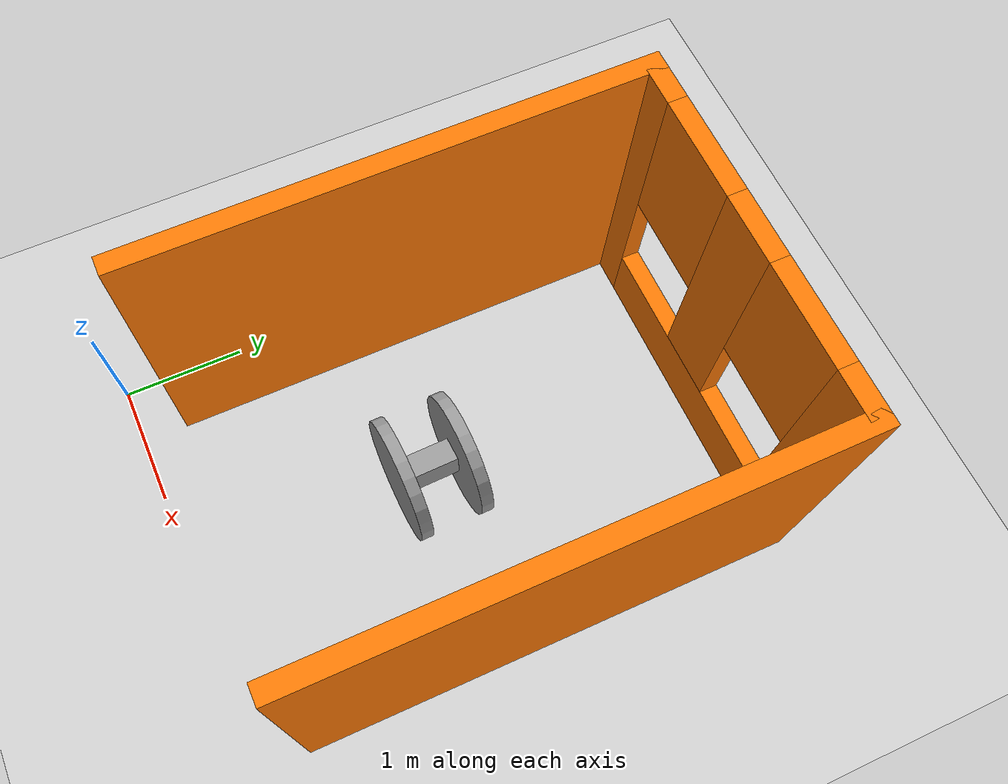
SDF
<sdf version="1.6">
 <world name="default">
  <model name="ground_plane">
   <static>1</static>
   <link name="link">
    <collision name="collision">
     <geometry><plane><normal>0 0 1</normal><size>100 100</size></plane></geometry>
     <surface>
      <contact><collide_bitmask>65535</collide_bitmask></contact>
      <friction><ode><mu>100</mu><mu2>50</mu2></ode></friction>
     </surface>
    </collision>
    <visual name="visual">
     <cast_shadows>0</cast_shadows>
     <geometry><plane><normal>0 0 1</normal><size>100 100</size></plane></geometry>
     <material>
      <script><uri>file://media/materials/scripts/gazebo.material</uri><name>Gazebo/Grey</name></script>
     </material>
    </visual>
   </link>
  </model>
  <model name="myrobot_0">
   <link name="link_2">
    <pose>-0.013333 0 -0.013331 0 -0 0</pose>
    <inertial>
     <mass>1</mass>
     <inertia>
      <ixx>0.166667</ixx>
      <ixy>0</ixy>
      <ixz>0</ixz>
      <iyy>0.166667</iyy>
      <iyz>0</iyz>
      <izz>0.166667</izz>
     </inertia>
    </inertial>
    <visual name="visual">
     <geometry><box><size>0.2 0.4 0.2</size></box></geometry>
     <material>
      <lighting>1</lighting>
      <script><uri>file://media/materials/scripts/gazebo.material</uri><name>Gazebo/Grey</name></script>
      <shader type="pixel"><normal_map>__default__</normal_map></shader>
      <ambient>0.3 0.3 0.3 1</ambient>
      <diffuse>0.7 0.7 0.7 1</diffuse>
      <specular>0.01 0.01 0.01 1</specular>
      <emissive>0 0 0 1</emissive>
     </material>
    </visual>
    <collision name="collision">
     <geometry><box><size>0.2 0.4 0.2</size></box></geometry>
     <surface>
      <friction>
       <ode><mu>1</mu><mu2>1</mu2><fdir1>0 0 0</fdir1><slip1>0</slip1><slip2>0</slip2></ode>
       <torsional>
        <coefficient>1</coefficient>
        <patch_radius>0</patch_radius>
        <surface_radius>0</surface_radius>
        <use_patch_radius>1</use_patch_radius>
        <ode><slip>0</slip></ode>
       </torsional>
      </friction>
      <bounce><restitution_coefficient>0</restitution_coefficient><threshold>1e+06</threshold></bounce>
      <contact>
       <collide_without_contact>0</collide_without_contact>
       <collide_without_contact_bitmask>1</collide_without_contact_bitmask>
       <collide_bitmask>1</collide_bitmask>
       <ode>
        <soft_cfm>0</soft_cfm>
        <soft_erp>0.2</soft_erp>
        <kp>1e+13</kp>
        <kd>1</kd>
        <max_vel>0.01</max_vel>
        <min_depth>0</min_depth>
       </ode>
       <bullet>
        <split_impulse>1</split_impulse>
        <split_impulse_penetration_threshold>-0.01</split_impulse_penetration_threshold>
        <soft_cfm>0</soft_cfm>
        <soft_erp>0.2</soft_erp>
        <kp>1e+13</kp>
        <kd>1</kd>
       </bullet>
      </contact>
     </surface>
    </collision>
   </link>
   <link name="link_3">
    <pose>0.006667 -0.250048 0.006665 1.5707 -0 0</pose>
    <inertial>
     <mass>1</mass>
     <inertia><ixx>0.145833</ixx><ixy>0</ixy><ixz>0</ixz><iyy>0.145833</iyy><iyz>0</iyz><izz>0.125</izz></inertia>
    </inertial>
    <visual name="visual">
     <geometry><cylinder><radius>0.5</radius><length>0.1</length></cylinder></geometry>
     <material>
      <lighting>1</lighting>
      <script><uri>file://media/materials/scripts/gazebo.material</uri><name>Gazebo/Grey</name></script>
      <shader type="pixel"><normal_map>__default__</normal_map></shader>
      <ambient>0.3 0.3 0.3 1</ambient>
      <diffuse>0.7 0.7 0.7 1</diffuse>
      <specular>0.01 0.01 0.01 1</specular>
      <emissive>0 0 0 1</emissive>
     </material>
    </visual>
    <collision name="collision">
     <geometry><cylinder><radius>0.5</radius><length>0.1</length></cylinder></geometry>
     <surface>
      <friction>
       <ode><mu>1</mu><mu2>1</mu2><fdir1>0 0 0</fdir1><slip1>0</slip1><slip2>0</slip2></ode>
       <torsional>
        <coefficient>1</coefficient>
        <patch_radius>0</patch_radius>
        <surface_radius>0</surface_radius>
        <use_patch_radius>1</use_patch_radius>
        <ode><slip>0</slip></ode>
       </torsional>
      </friction>
      <bounce><restitution_coefficient>0</restitution_coefficient><threshold>1e+06</threshold></bounce>
      <contact>
       <collide_without_contact>0</collide_without_contact>
       <collide_without_contact_bitmask>1</collide_without_contact_bitmask>
       <collide_bitmask>1</collide_bitmask>
       <ode>
        <soft_cfm>0</soft_cfm>
        <soft_erp>0.2</soft_erp>
        <kp>1e+13</kp>
        <kd>1</kd>
        <max_vel>0.01</max_vel>
        <min_depth>0</min_depth>
       </ode>
       <bullet>
        <split_impulse>1</split_impulse>
        <split_impulse_penetration_threshold>-0.01</split_impulse_penetration_threshold>
        <soft_cfm>0</soft_cfm>
        <soft_erp>0.2</soft_erp>
        <kp>1e+13</kp>
        <kd>1</kd>
       </bullet>
      </contact>
     </surface>
    </collision>
   </link>
   <link name="link_3_clone">
    <pose>0.006667 0.250048 0.006669 1.5707 -0 0</pose>
    <inertial>
     <mass>1</mass>
     <inertia><ixx>0.145833</ixx><ixy>0</ixy><ixz>0</ixz><iyy>0.145833</iyy><iyz>0</iyz><izz>0.125</izz></inertia>
    </inertial>
    <visual name="visual">
     <geometry><cylinder><radius>0.5</radius><length>0.1</length></cylinder></geometry>
     <material>
      <lighting>1</lighting>
      <script><uri>file://media/materials/scripts/gazebo.material</uri><name>Gazebo/Grey</name></script>
      <shader type="pixel"><normal_map>__default__</normal_map></shader>
      <ambient>0.3 0.3 0.3 1</ambient>
      <diffuse>0.7 0.7 0.7 1</diffuse>
      <specular>0.01 0.01 0.01 1</specular>
      <emissive>0 0 0 1</emissive>
     </material>
    </visual>
    <collision name="collision">
     <geometry><cylinder><radius>0.5</radius><length>0.1</length></cylinder></geometry>
     <surface>
      <friction>
       <ode><mu>1</mu><mu2>1</mu2><fdir1>0 0 0</fdir1><slip1>0</slip1><slip2>0</slip2></ode>
       <torsional>
        <coefficient>1</coefficient>
        <patch_radius>0</patch_radius>
        <surface_radius>0</surface_radius>
        <use_patch_radius>1</use_patch_radius>
        <ode><slip>0</slip></ode>
       </torsional>
      </friction>
      <bounce><restitution_coefficient>0</restitution_coefficient><threshold>1e+06</threshold></bounce>
      <contact>
       <collide_without_contact>0</collide_without_contact>
       <collide_without_contact_bitmask>1</collide_without_contact_bitmask>
       <collide_bitmask>1</collide_bitmask>
       <ode>
        <soft_cfm>0</soft_cfm>
        <soft_erp>0.2</soft_erp>
        <kp>1e+13</kp>
        <kd>1</kd>
        <max_vel>0.01</max_vel>
        <min_depth>0</min_depth>
       </ode>
       <bullet>
        <split_impulse>1</split_impulse>
        <split_impulse_penetration_threshold>-0.01</split_impulse_penetration_threshold>
        <soft_cfm>0</soft_cfm>
        <soft_erp>0.2</soft_erp>
        <kp>1e+13</kp>
        <kd>1</kd>
       </bullet>
      </contact>
     </surface>
    </collision>
   </link>
   <joint name="link_2_JOINT_6" type="revolute">
    <parent>link_2</parent>
    <child>link_3</child>
    <axis>
     <xyz>0 0 -1</xyz>
     <use_parent_model_frame>0</use_parent_model_frame>
     <limit>
      <lower>-1.79769e+308</lower>
      <upper>1.79769e+308</upper>
      <effort>-1</effort>
      <velocity>-1</velocity>
     </limit>
     <dynamics>
      <spring_reference>0</spring_reference>
      <spring_stiffness>0</spring_stiffness>
      <damping>0</damping>
     </dynamics>
    </axis>
    <physics>
     <ode><limit><cfm>0</cfm><erp>0.2</erp></limit><suspension><cfm>0</cfm><erp>0.2</erp></suspension></ode>
    </physics>
   </joint>
   <joint name="link_2_JOINT_7" type="revolute">
    <parent>link_2</parent>
    <child>link_3_clone</child>
    <axis>
     <xyz>0 0 1</xyz>
     <use_parent_model_frame>0</use_parent_model_frame>
     <limit>
      <lower>-1.79769e+308</lower>
      <upper>1.79769e+308</upper>
      <effort>-1</effort>
      <velocity>-1</velocity>
     </limit>
     <dynamics>
      <spring_reference>0</spring_reference>
      <spring_stiffness>0</spring_stiffness>
      <damping>0</damping>
     </dynamics>
    </axis>
    <physics>
     <ode><limit><cfm>0</cfm><erp>0.2</erp></limit><suspension><cfm>0</cfm><erp>0.2</erp></suspension></ode>
    </physics>
   </joint>
   <static>0</static>
   <pose>1.77026 2.01534 0.492404 -4e-06 -0.151141 0.020457</pose>
  </model>
  <model name="myhouse">
   <link name="Wall_10">
    <pose>1.84738 5.36737 0 0 -0 0</pose>
    <visual name="Wall_10_Visual_0">
     <pose>-1.2952 0 1.25 0 -0 0</pose>
     <geometry><box><size>0.409593 0.15 2.5</size></box></geometry>
     <material>
      <script><uri>file://media/materials/scripts/gazebo.material</uri><name>Gazebo/Grey</name></script>
      <ambient>0.996078 0.47451 0.0196078 1</ambient>
      <shader type="pixel"/>
      <diffuse>0.7 0.7 0.7 1</diffuse>
      <specular>0.01 0.01 0.01 1</specular>
      <emissive>0 0 0 1</emissive>
     </material>
     <meta><layer>0</layer></meta>
    </visual>
    <visual name="Wall_10_Visual_1">
     <pose>0.204797 0 0.25 0 -0 0</pose>
     <geometry><box><size>2.59041 0.15 0.5</size></box></geometry>
     <material>
      <script><uri>file://media/materials/scripts/gazebo.material</uri><name>Gazebo/Grey</name></script>
      <ambient>0.996078 0.47451 0.0196078 1</ambient>
      <shader type="pixel"/>
      <diffuse>0.7 0.7 0.7 1</diffuse>
      <specular>0.01 0.01 0.01 1</specular>
      <emissive>0 0 0 1</emissive>
     </material>
     <meta><layer>0</layer></meta>
    </visual>
    <visual name="Wall_10_Visual_2">
     <pose>-0.02201 0 1.5 0 -0 0</pose>
     <geometry><box><size>0.536793 0.15 2</size></box></geometry>
     <material>
      <script><uri>file://media/materials/scripts/gazebo.material</uri><name>Gazebo/Grey</name></script>
      <ambient>0.996078 0.47451 0.0196078 1</ambient>
      <shader type="pixel"/>
      <diffuse>0.7 0.7 0.7 1</diffuse>
      <specular>0.01 0.01 0.01 1</specular>
      <emissive>0 0 0 1</emissive>
     </material>
     <meta><layer>0</layer></meta>
    </visual>
    <visual name="Wall_10_Visual_3">
     <pose>1.27319 0 1.5 0 -0 0</pose>
     <geometry><box><size>0.453614 0.15 2</size></box></geometry>
     <material>
      <script><uri>file://media/materials/scripts/gazebo.material</uri><name>Gazebo/Grey</name></script>
      <ambient>0.996078 0.47451 0.0196078 1</ambient>
      <shader type="pixel"/>
      <diffuse>0.7 0.7 0.7 1</diffuse>
      <specular>0.01 0.01 0.01 1</specular>
      <emissive>0 0 0 1</emissive>
     </material>
     <meta><layer>0</layer></meta>
    </visual>
    <visual name="Wall_10_Visual_4">
     <pose>-0.690407 0 1.9 0 -0 0</pose>
     <geometry><box><size>0.8 0.15 1.2</size></box></geometry>
     <material>
      <script><uri>file://media/materials/scripts/gazebo.material</uri><name>Gazebo/Grey</name></script>
      <ambient>0.996078 0.47451 0.0196078 1</ambient>
      <shader type="pixel"/>
      <diffuse>0.7 0.7 0.7 1</diffuse>
      <specular>0.01 0.01 0.01 1</specular>
      <emissive>0 0 0 1</emissive>
     </material>
     <meta><layer>0</layer></meta>
    </visual>
    <visual name="Wall_10_Visual_5">
     <pose>0.646386 0 1.9 0 -0 0</pose>
     <geometry><box><size>0.8 0.15 1.2</size></box></geometry>
     <material>
      <script><uri>file://media/materials/scripts/gazebo.material</uri><name>Gazebo/Grey</name></script>
      <ambient>0.996078 0.47451 0.0196078 1</ambient>
      <shader type="pixel"/>
      <diffuse>0.7 0.7 0.7 1</diffuse>
      <specular>0.01 0.01 0.01 1</specular>
      <emissive>0 0 0 1</emissive>
     </material>
     <meta><layer>0</layer></meta>
    </visual>
    <collision name="Wall_10_Collision_0">
     <pose>-1.2952 0 1.25 0 -0 0</pose>
     <geometry><box><size>0.409593 0.15 2.5</size></box></geometry>
     <surface>
      <friction>
       <ode><mu>1</mu><mu2>1</mu2><fdir1>0 0 0</fdir1><slip1>0</slip1><slip2>0</slip2></ode>
       <torsional>
        <coefficient>1</coefficient>
        <patch_radius>0</patch_radius>
        <surface_radius>0</surface_radius>
        <use_patch_radius>1</use_patch_radius>
        <ode><slip>0</slip></ode>
       </torsional>
      </friction>
      <bounce><restitution_coefficient>0</restitution_coefficient><threshold>1e+06</threshold></bounce>
      <contact>
       <collide_without_contact>0</collide_without_contact>
       <collide_without_contact_bitmask>1</collide_without_contact_bitmask>
       <collide_bitmask>1</collide_bitmask>
       <ode>
        <soft_cfm>0</soft_cfm>
        <soft_erp>0.2</soft_erp>
        <kp>1e+13</kp>
        <kd>1</kd>
        <max_vel>0.01</max_vel>
        <min_depth>0</min_depth>
       </ode>
       <bullet>
        <split_impulse>1</split_impulse>
        <split_impulse_penetration_threshold>-0.01</split_impulse_penetration_threshold>
        <soft_cfm>0</soft_cfm>
        <soft_erp>0.2</soft_erp>
        <kp>1e+13</kp>
        <kd>1</kd>
       </bullet>
      </contact>
     </surface>
    </collision>
    <collision name="Wall_10_Collision_2">
     <pose>-0.02201 0 1.5 0 -0 0</pose>
     <geometry><box><size>0.536793 0.15 2</size></box></geometry>
     <surface>
      <friction>
       <ode><mu>1</mu><mu2>1</mu2><fdir1>0 0 0</fdir1><slip1>0</slip1><slip2>0</slip2></ode>
       <torsional>
        <coefficient>1</coefficient>
        <patch_radius>0</patch_radius>
        <surface_radius>0</surface_radius>
        <use_patch_radius>1</use_patch_radius>
        <ode><slip>0</slip></ode>
       </torsional>
      </friction>
      <bounce><restitution_coefficient>0</restitution_coefficient><threshold>1e+06</threshold></bounce>
      <contact>
       <collide_without_contact>0</collide_without_contact>
       <collide_without_contact_bitmask>1</collide_without_contact_bitmask>
       <collide_bitmask>1</collide_bitmask>
       <ode>
        <soft_cfm>0</soft_cfm>
        <soft_erp>0.2</soft_erp>
        <kp>1e+13</kp>
        <kd>1</kd>
        <max_vel>0.01</max_vel>
        <min_depth>0</min_depth>
       </ode>
       <bullet>
        <split_impulse>1</split_impulse>
        <split_impulse_penetration_threshold>-0.01</split_impulse_penetration_threshold>
        <soft_cfm>0</soft_cfm>
        <soft_erp>0.2</soft_erp>
        <kp>1e+13</kp>
        <kd>1</kd>
       </bullet>
      </contact>
     </surface>
    </collision>
    <collision name="Wall_10_Collision_1">
     <pose>0.204797 0 0.25 0 -0 0</pose>
     <geometry><box><size>2.59041 0.15 0.5</size></box></geometry>
     <surface>
      <friction>
       <ode><mu>1</mu><mu2>1</mu2><fdir1>0 0 0</fdir1><slip1>0</slip1><slip2>0</slip2></ode>
       <torsional>
        <coefficient>1</coefficient>
        <patch_radius>0</patch_radius>
        <surface_radius>0</surface_radius>
        <use_patch_radius>1</use_patch_radius>
        <ode><slip>0</slip></ode>
       </torsional>
      </friction>
      <bounce><restitution_coefficient>0</restitution_coefficient><threshold>1e+06</threshold></bounce>
      <contact>
       <collide_without_contact>0</collide_without_contact>
       <collide_without_contact_bitmask>1</collide_without_contact_bitmask>
       <collide_bitmask>1</collide_bitmask>
       <ode>
        <soft_cfm>0</soft_cfm>
        <soft_erp>0.2</soft_erp>
        <kp>1e+13</kp>
        <kd>1</kd>
        <max_vel>0.01</max_vel>
        <min_depth>0</min_depth>
       </ode>
       <bullet>
        <split_impulse>1</split_impulse>
        <split_impulse_penetration_threshold>-0.01</split_impulse_penetration_threshold>
        <soft_cfm>0</soft_cfm>
        <soft_erp>0.2</soft_erp>
        <kp>1e+13</kp>
        <kd>1</kd>
       </bullet>
      </contact>
     </surface>
    </collision>
    <collision name="Wall_10_Collision_3">
     <pose>1.27319 0 1.5 0 -0 0</pose>
     <geometry><box><size>0.453614 0.15 2</size></box></geometry>
     <surface>
      <friction>
       <ode><mu>1</mu><mu2>1</mu2><fdir1>0 0 0</fdir1><slip1>0</slip1><slip2>0</slip2></ode>
       <torsional>
        <coefficient>1</coefficient>
        <patch_radius>0</patch_radius>
        <surface_radius>0</surface_radius>
        <use_patch_radius>1</use_patch_radius>
        <ode><slip>0</slip></ode>
       </torsional>
      </friction>
      <bounce><restitution_coefficient>0</restitution_coefficient><threshold>1e+06</threshold></bounce>
      <contact>
       <collide_without_contact>0</collide_without_contact>
       <collide_without_contact_bitmask>1</collide_without_contact_bitmask>
       <collide_bitmask>1</collide_bitmask>
       <ode>
        <soft_cfm>0</soft_cfm>
        <soft_erp>0.2</soft_erp>
        <kp>1e+13</kp>
        <kd>1</kd>
        <max_vel>0.01</max_vel>
        <min_depth>0</min_depth>
       </ode>
       <bullet>
        <split_impulse>1</split_impulse>
        <split_impulse_penetration_threshold>-0.01</split_impulse_penetration_threshold>
        <soft_cfm>0</soft_cfm>
        <soft_erp>0.2</soft_erp>
        <kp>1e+13</kp>
        <kd>1</kd>
       </bullet>
      </contact>
     </surface>
    </collision>
    <collision name="Wall_10_Collision_4">
     <pose>-0.690407 0 1.9 0 -0 0</pose>
     <geometry><box><size>0.8 0.15 1.2</size></box></geometry>
     <surface>
      <friction>
       <ode><mu>1</mu><mu2>1</mu2><fdir1>0 0 0</fdir1><slip1>0</slip1><slip2>0</slip2></ode>
       <torsional>
        <coefficient>1</coefficient>
        <patch_radius>0</patch_radius>
        <surface_radius>0</surface_radius>
        <use_patch_radius>1</use_patch_radius>
        <ode><slip>0</slip></ode>
       </torsional>
      </friction>
      <bounce><restitution_coefficient>0</restitution_coefficient><threshold>1e+06</threshold></bounce>
      <contact>
       <collide_without_contact>0</collide_without_contact>
       <collide_without_contact_bitmask>1</collide_without_contact_bitmask>
       <collide_bitmask>1</collide_bitmask>
       <ode>
        <soft_cfm>0</soft_cfm>
        <soft_erp>0.2</soft_erp>
        <kp>1e+13</kp>
        <kd>1</kd>
        <max_vel>0.01</max_vel>
        <min_depth>0</min_depth>
       </ode>
       <bullet>
        <split_impulse>1</split_impulse>
        <split_impulse_penetration_threshold>-0.01</split_impulse_penetration_threshold>
        <soft_cfm>0</soft_cfm>
        <soft_erp>0.2</soft_erp>
        <kp>1e+13</kp>
        <kd>1</kd>
       </bullet>
      </contact>
     </surface>
    </collision>
    <collision name="Wall_10_Collision_5">
     <pose>0.646386 0 1.9 0 -0 0</pose>
     <geometry><box><size>0.8 0.15 1.2</size></box></geometry>
     <surface>
      <friction>
       <ode><mu>1</mu><mu2>1</mu2><fdir1>0 0 0</fdir1><slip1>0</slip1><slip2>0</slip2></ode>
       <torsional>
        <coefficient>1</coefficient>
        <patch_radius>0</patch_radius>
        <surface_radius>0</surface_radius>
        <use_patch_radius>1</use_patch_radius>
        <ode><slip>0</slip></ode>
       </torsional>
      </friction>
      <bounce><restitution_coefficient>0</restitution_coefficient><threshold>1e+06</threshold></bounce>
      <contact>
       <collide_without_contact>0</collide_without_contact>
       <collide_without_contact_bitmask>1</collide_without_contact_bitmask>
       <collide_bitmask>1</collide_bitmask>
       <ode>
        <soft_cfm>0</soft_cfm>
        <soft_erp>0.2</soft_erp>
        <kp>1e+13</kp>
        <kd>1</kd>
        <max_vel>0.01</max_vel>
        <min_depth>0</min_depth>
       </ode>
       <bullet>
        <split_impulse>1</split_impulse>
        <split_impulse_penetration_threshold>-0.01</split_impulse_penetration_threshold>
        <soft_cfm>0</soft_cfm>
        <soft_erp>0.2</soft_erp>
        <kp>1e+13</kp>
        <kd>1</kd>
       </bullet>
      </contact>
     </surface>
    </collision>
   </link>
   <link name="Wall_11">
    <pose>3.27238 3.44237 0 0 0 -1.5708</pose>
    <visual name="Wall_11_Visual">
     <pose>0 0 1.25 0 -0 0</pose>
     <geometry><box><size>4 0.15 2.5</size></box></geometry>
     <material>
      <script><uri>file://media/materials/scripts/gazebo.material</uri><name>Gazebo/Grey</name></script>
      <ambient>0.996078 0.47451 0.0196078 1</ambient>
      <shader type="pixel"/>
      <diffuse>0.7 0.7 0.7 1</diffuse>
      <specular>0.01 0.01 0.01 1</specular>
      <emissive>0 0 0 1</emissive>
     </material>
     <meta><layer>0</layer></meta>
    </visual>
    <collision name="Wall_11_Collision">
     <pose>0 0 1.25 0 -0 0</pose>
     <geometry><box><size>4 0.15 2.5</size></box></geometry>
     <surface>
      <friction>
       <ode><mu>1</mu><mu2>1</mu2><fdir1>0 0 0</fdir1><slip1>0</slip1><slip2>0</slip2></ode>
       <torsional>
        <coefficient>1</coefficient>
        <patch_radius>0</patch_radius>
        <surface_radius>0</surface_radius>
        <use_patch_radius>1</use_patch_radius>
        <ode><slip>0</slip></ode>
       </torsional>
      </friction>
      <bounce><restitution_coefficient>0</restitution_coefficient><threshold>1e+06</threshold></bounce>
      <contact>
       <collide_without_contact>0</collide_without_contact>
       <collide_without_contact_bitmask>1</collide_without_contact_bitmask>
       <collide_bitmask>1</collide_bitmask>
       <ode>
        <soft_cfm>0</soft_cfm>
        <soft_erp>0.2</soft_erp>
        <kp>1e+13</kp>
        <kd>1</kd>
        <max_vel>0.01</max_vel>
        <min_depth>0</min_depth>
       </ode>
       <bullet>
        <split_impulse>1</split_impulse>
        <split_impulse_penetration_threshold>-0.01</split_impulse_penetration_threshold>
        <soft_cfm>0</soft_cfm>
        <soft_erp>0.2</soft_erp>
        <kp>1e+13</kp>
        <kd>1</kd>
       </bullet>
      </contact>
     </surface>
    </collision>
   </link>
   <link name="Wall_15">
    <pose>0.422384 3.44237 0 0 0 -1.5708</pose>
    <visual name="Wall_15_Visual">
     <pose>0 0 1.25 0 -0 0</pose>
     <geometry><box><size>4 0.15 2.5</size></box></geometry>
     <material>
      <script><uri>file://media/materials/scripts/gazebo.material</uri><name>Gazebo/Grey</name></script>
      <ambient>0.996078 0.47451 0.0196078 1</ambient>
      <shader type="pixel"/>
      <diffuse>0.7 0.7 0.7 1</diffuse>
      <specular>0.01 0.01 0.01 1</specular>
      <emissive>0 0 0 1</emissive>
     </material>
     <meta><layer>0</layer></meta>
    </visual>
    <collision name="Wall_15_Collision">
     <pose>0 0 1.25 0 -0 0</pose>
     <geometry><box><size>4 0.15 2.5</size></box></geometry>
     <surface>
      <friction>
       <ode><mu>1</mu><mu2>1</mu2><fdir1>0 0 0</fdir1><slip1>0</slip1><slip2>0</slip2></ode>
       <torsional>
        <coefficient>1</coefficient>
        <patch_radius>0</patch_radius>
        <surface_radius>0</surface_radius>
        <use_patch_radius>1</use_patch_radius>
        <ode><slip>0</slip></ode>
       </torsional>
      </friction>
      <bounce><restitution_coefficient>0</restitution_coefficient><threshold>1e+06</threshold></bounce>
      <contact>
       <collide_without_contact>0</collide_without_contact>
       <collide_without_contact_bitmask>1</collide_without_contact_bitmask>
       <collide_bitmask>1</collide_bitmask>
       <ode>
        <soft_cfm>0</soft_cfm>
        <soft_erp>0.2</soft_erp>
        <kp>1e+13</kp>
        <kd>1</kd>
        <max_vel>0.01</max_vel>
        <min_depth>0</min_depth>
       </ode>
       <bullet>
        <split_impulse>1</split_impulse>
        <split_impulse_penetration_threshold>-0.01</split_impulse_penetration_threshold>
        <soft_cfm>0</soft_cfm>
        <soft_erp>0.2</soft_erp>
        <kp>1e+13</kp>
        <kd>1</kd>
       </bullet>
      </contact>
     </surface>
    </collision>
   </link>
   <static>1</static>
   <pose>-0.02726 -1.07593 0 0 -0 0</pose>
  </model>
 </world>
</sdf>
